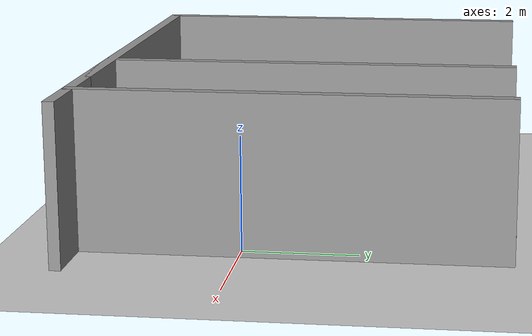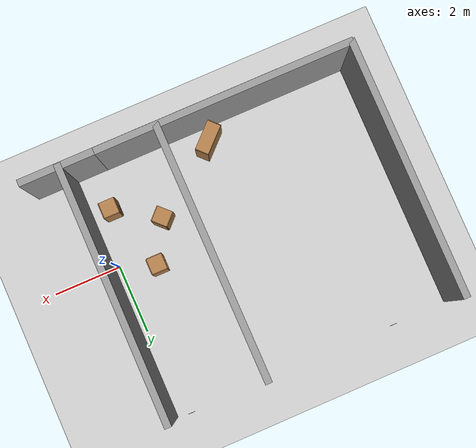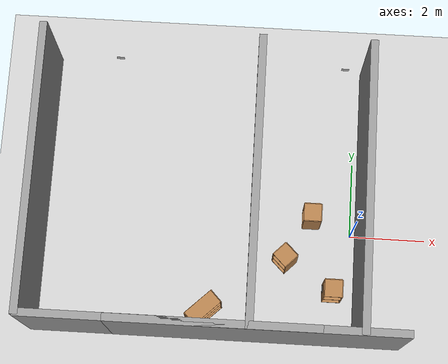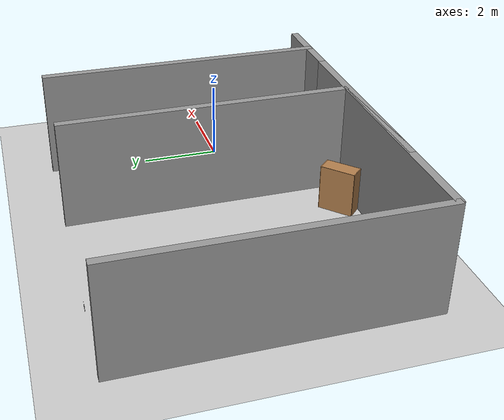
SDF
<sdf version="1.4">
 <world name="default">
  <model name="character">
   <static>1</static>
   <link name="cluedo_character::link">
    <collision name="collision">
     <geometry><plane><normal>0 0 1</normal><size>0.21 0.297</size></plane></geometry>
     <surface><friction><ode><mu>100</mu><mu2>50</mu2></ode></friction></surface>
    </collision>
    <visual name="visual">
     <pose>-0.7 -1.5 0.4 1.57 5.55112e-17 -1.57</pose>
     <cast_shadows>0</cast_shadows>
     <geometry><plane><normal>0 0 1</normal><size>0.21 0.297</size></plane></geometry>
     <material>
      <script>
       <uri>model://cluedo_character/materials/scripts</uri>
       <uri>model://cluedo_character/materials/textures</uri>
       <name>Cluedo_character/Image</name>
      </script>
     </material>
    </visual>
    <velocity_decay><linear>0</linear><angular>0</angular></velocity_decay>
   </link>
  </model>
  <model name="ground_plane">
   <static>1</static>
   <link name="link">
    <collision name="collision">
     <geometry><plane><normal>0 0 1</normal><size>100 100</size></plane></geometry>
     <surface><friction><ode><mu>100</mu><mu2>50</mu2></ode></friction></surface>
    </collision>
    <visual name="visual">
     <cast_shadows>0</cast_shadows>
     <geometry><plane><normal>0 0 1</normal><size>100 100</size></plane></geometry>
     <material>
      <script><uri>file://media/materials/scripts/gazebo.material</uri><name>Gazebo/Grey</name></script>
     </material>
    </visual>
    <velocity_decay><linear>0</linear><angular>0</angular></velocity_decay>
   </link>
  </model>
  <model name="grey_wall_0">
   <static>1</static>
   <link name="link">
    <pose>0 0 1.4 0 -0 0</pose>
    <collision name="collision"><geometry><box><size>7.5 0.2 2.8</size></box></geometry></collision>
    <visual name="visual">
     <cast_shadows>0</cast_shadows>
     <geometry><box><size>7.5 0.2 2.8</size></box></geometry>
     <material>
      <script>
       <uri>model://grey_wall/materials/scripts</uri>
       <uri>model://grey_wall/materials/textures</uri>
       <name>vrc/grey_wall</name>
      </script>
     </material>
    </visual>
    <velocity_decay><linear>0</linear><angular>0</angular></velocity_decay>
   </link>
   <pose>-4.53321 -2.83506 0 0 -0 0</pose>
  </model>
  <model name="grey_wall_1">
   <static>1</static>
   <link name="link">
    <pose>0 0 1.4 0 -0 0</pose>
    <collision name="collision"><geometry><box><size>7.5 0.2 2.8</size></box></geometry></collision>
    <visual name="visual">
     <cast_shadows>0</cast_shadows>
     <geometry><box><size>7.5 0.2 2.8</size></box></geometry>
     <material>
      <script>
       <uri>model://grey_wall/materials/scripts</uri>
       <uri>model://grey_wall/materials/textures</uri>
       <name>vrc/grey_wall</name>
      </script>
     </material>
    </visual>
    <velocity_decay><linear>0</linear><angular>0</angular></velocity_decay>
   </link>
   <pose>-8.23248 0.854179 0 0 0 -1.57181</pose>
  </model>
  <model name="grey_wall_2">
   <static>1</static>
   <link name="link">
    <pose>0 0 1.4 0 -0 0</pose>
    <collision name="collision"><geometry><box><size>7.5 0.2 2.8</size></box></geometry></collision>
    <visual name="visual">
     <cast_shadows>0</cast_shadows>
     <geometry><box><size>7.5 0.2 2.8</size></box></geometry>
     <material>
      <script>
       <uri>model://grey_wall/materials/scripts</uri>
       <uri>model://grey_wall/materials/textures</uri>
       <name>vrc/grey_wall</name>
      </script>
     </material>
    </visual>
    <velocity_decay><linear>0</linear><angular>0</angular></velocity_decay>
   </link>
   <pose>-2.58688 0.824953 0 0 -0 1.57557</pose>
  </model>
  <model name="grey_wall_3">
   <static>1</static>
   <link name="link">
    <pose>0 0 1.4 0 -0 0</pose>
    <collision name="collision"><geometry><box><size>7.5 0.2 2.8</size></box></geometry></collision>
    <visual name="visual">
     <cast_shadows>0</cast_shadows>
     <geometry><box><size>7.5 0.2 2.8</size></box></geometry>
     <material>
      <script>
       <uri>model://grey_wall/materials/scripts</uri>
       <uri>model://grey_wall/materials/textures</uri>
       <name>vrc/grey_wall</name>
      </script>
     </material>
    </visual>
    <velocity_decay><linear>0</linear><angular>0</angular></velocity_decay>
   </link>
   <pose>0.233745 0.831211 0.00212 0 0 -1.57102</pose>
  </model>
  <model name="grey_wall_4">
   <static>1</static>
   <link name="link">
    <pose>0 0 1.4 0 -0 0</pose>
    <collision name="collision"><geometry><box><size>7.5 0.2 2.8</size></box></geometry></collision>
    <visual name="visual">
     <cast_shadows>0</cast_shadows>
     <geometry><box><size>7.5 0.2 2.8</size></box></geometry>
     <material>
      <script>
       <uri>model://grey_wall/materials/scripts</uri>
       <uri>model://grey_wall/materials/textures</uri>
       <name>vrc/grey_wall</name>
      </script>
     </material>
    </visual>
    <velocity_decay><linear>0</linear><angular>0</angular></velocity_decay>
   </link>
   <pose>-2.37715 -2.83764 0 0 -0 0</pose>
  </model>
  <model name="cabinet">
   <static>1</static>
   <link name="cabinet_bottom_plate">
    <inertial>
     <pose>0 0 -1 0 -0 0</pose>
     <inertia><ixx>2.05</ixx><ixy>0</ixy><ixz>0</ixz><iyy>2.05</iyy><iyz>0</iyz><izz>2.05</izz></inertia>
     <mass>25</mass>
    </inertial>
    <collision name="cabinet_bottom_plate_geom">
     <pose>0 0 0.01 0 -0 0</pose>
     <geometry><box><size>0.45 0.45 0.02</size></box></geometry>
    </collision>
    <visual name="cabinet_bottom_plate_geom_visual">
     <pose>0 0 0.01 0 -0 0</pose>
     <geometry><box><size>0.45 0.45 0.02</size></box></geometry>
     <material>
      <script><uri>file://media/materials/scripts/gazebo.material</uri><name>Gazebo/Wood</name></script>
     </material>
    </visual>
    <collision name="cabinet_bottom_plate_geom_cabinet_back_plate">
     <pose>0.235 0 0.51 0 -0 0</pose>
     <geometry><box><size>0.02 0.45 1.02</size></box></geometry>
    </collision>
    <visual name="cabinet_bottom_plate_geom_cabinet_back_plate_visual">
     <pose>0.235 0 0.51 0 -0 0</pose>
     <geometry><box><size>0.02 0.45 1.02</size></box></geometry>
     <material>
      <script><uri>file://media/materials/scripts/gazebo.material</uri><name>Gazebo/Wood</name></script>
     </material>
    </visual>
    <collision name="cabinet_bottom_plate_geom_cabinet_left_plate">
     <pose>0 0.235 0.51 0 -0 0</pose>
     <geometry><box><size>0.45 0.02 1.02</size></box></geometry>
    </collision>
    <visual name="cabinet_bottom_plate_geom_cabinet_left_plate_visual">
     <pose>0 0.235 0.51 0 -0 0</pose>
     <geometry><box><size>0.45 0.02 1.02</size></box></geometry>
     <material>
      <script><uri>file://media/materials/scripts/gazebo.material</uri><name>Gazebo/Wood</name></script>
     </material>
    </visual>
    <collision name="cabinet_bottom_plate_geom_cabinet_middle_plate">
     <pose>0 0 0.51 0 -0 0</pose>
     <geometry><box><size>0.45 0.45 0.02</size></box></geometry>
    </collision>
    <visual name="cabinet_bottom_plate_geom_cabinet_middle_plate_visual">
     <pose>0 0 0.51 0 -0 0</pose>
     <geometry><box><size>0.45 0.45 0.02</size></box></geometry>
     <material>
      <script><uri>file://media/materials/scripts/gazebo.material</uri><name>Gazebo/Wood</name></script>
     </material>
    </visual>
    <collision name="cabinet_bottom_plate_geom_cabinet_right_plate">
     <pose>0 -0.235 0.51 0 -0 0</pose>
     <geometry><box><size>0.45 0.02 1.02</size></box></geometry>
    </collision>
    <visual name="cabinet_bottom_plate_geom_cabinet_right_plate_visual">
     <pose>0 -0.235 0.51 0 -0 0</pose>
     <geometry><box><size>0.45 0.02 1.02</size></box></geometry>
     <material>
      <script><uri>file://media/materials/scripts/gazebo.material</uri><name>Gazebo/Wood</name></script>
     </material>
    </visual>
    <collision name="cabinet_bottom_plate_geom_cabinet_top_plate">
     <pose>0 0 1.01 0 -0 0</pose>
     <geometry><box><size>0.45 0.45 0.02</size></box></geometry>
    </collision>
    <visual name="cabinet_bottom_plate_geom_cabinet_top_plate_visual">
     <pose>0 0 1.01 0 -0 0</pose>
     <geometry><box><size>0.45 0.45 0.02</size></box></geometry>
     <material>
      <script><uri>file://media/materials/scripts/gazebo.material</uri><name>Gazebo/Wood</name></script>
     </material>
    </visual>
    <velocity_decay><linear>0</linear><angular>0</angular></velocity_decay>
   </link>
   <pose>-0.446703 -1.56247 0.028898 0 -0 1.56926</pose>
  </model>
  <model name="cabinet_0">
   <static>1</static>
   <link name="cabinet_bottom_plate">
    <inertial>
     <pose>0 0 -1 0 -0 0</pose>
     <inertia><ixx>2.05</ixx><ixy>0</ixy><ixz>0</ixz><iyy>2.05</iyy><iyz>0</iyz><izz>2.05</izz></inertia>
     <mass>25</mass>
    </inertial>
    <collision name="cabinet_bottom_plate_geom">
     <pose>0 0 0.01 0 -0 0</pose>
     <geometry><box><size>0.45 0.45 0.02</size></box></geometry>
    </collision>
    <visual name="cabinet_bottom_plate_geom_visual">
     <pose>0 0 0.01 0 -0 0</pose>
     <geometry><box><size>0.45 0.45 0.02</size></box></geometry>
     <material>
      <script><uri>file://media/materials/scripts/gazebo.material</uri><name>Gazebo/Wood</name></script>
     </material>
    </visual>
    <collision name="cabinet_bottom_plate_geom_cabinet_back_plate">
     <pose>0.235 0 0.51 0 -0 0</pose>
     <geometry><box><size>0.02 0.45 1.02</size></box></geometry>
    </collision>
    <visual name="cabinet_bottom_plate_geom_cabinet_back_plate_visual">
     <pose>0.235 0 0.51 0 -0 0</pose>
     <geometry><box><size>0.02 0.45 1.02</size></box></geometry>
     <material>
      <script><uri>file://media/materials/scripts/gazebo.material</uri><name>Gazebo/Wood</name></script>
     </material>
    </visual>
    <collision name="cabinet_bottom_plate_geom_cabinet_left_plate">
     <pose>0 0.235 0.51 0 -0 0</pose>
     <geometry><box><size>0.45 0.02 1.02</size></box></geometry>
    </collision>
    <visual name="cabinet_bottom_plate_geom_cabinet_left_plate_visual">
     <pose>0 0.235 0.51 0 -0 0</pose>
     <geometry><box><size>0.45 0.02 1.02</size></box></geometry>
     <material>
      <script><uri>file://media/materials/scripts/gazebo.material</uri><name>Gazebo/Wood</name></script>
     </material>
    </visual>
    <collision name="cabinet_bottom_plate_geom_cabinet_middle_plate">
     <pose>0 0 0.51 0 -0 0</pose>
     <geometry><box><size>0.45 0.45 0.02</size></box></geometry>
    </collision>
    <visual name="cabinet_bottom_plate_geom_cabinet_middle_plate_visual">
     <pose>0 0 0.51 0 -0 0</pose>
     <geometry><box><size>0.45 0.45 0.02</size></box></geometry>
     <material>
      <script><uri>file://media/materials/scripts/gazebo.material</uri><name>Gazebo/Wood</name></script>
     </material>
    </visual>
    <collision name="cabinet_bottom_plate_geom_cabinet_right_plate">
     <pose>0 -0.235 0.51 0 -0 0</pose>
     <geometry><box><size>0.45 0.02 1.02</size></box></geometry>
    </collision>
    <visual name="cabinet_bottom_plate_geom_cabinet_right_plate_visual">
     <pose>0 -0.235 0.51 0 -0 0</pose>
     <geometry><box><size>0.45 0.02 1.02</size></box></geometry>
     <material>
      <script><uri>file://media/materials/scripts/gazebo.material</uri><name>Gazebo/Wood</name></script>
     </material>
    </visual>
    <collision name="cabinet_bottom_plate_geom_cabinet_top_plate">
     <pose>0 0 1.01 0 -0 0</pose>
     <geometry><box><size>0.45 0.45 0.02</size></box></geometry>
    </collision>
    <visual name="cabinet_bottom_plate_geom_cabinet_top_plate_visual">
     <pose>0 0 1.01 0 -0 0</pose>
     <geometry><box><size>0.45 0.45 0.02</size></box></geometry>
     <material>
      <script><uri>file://media/materials/scripts/gazebo.material</uri><name>Gazebo/Wood</name></script>
     </material>
    </visual>
    <velocity_decay><linear>0</linear><angular>0</angular></velocity_decay>
   </link>
   <pose>-1.05982 0.41087 0 0 -0 0</pose>
  </model>
  <model name="bookshelf_0">
   <static>1</static>
   <link name="link">
    <inertial><mass>1</mass></inertial>
    <collision name="back">
     <pose>0 0.005 0.6 0 -0 0</pose>
     <geometry><box><size>0.9 0.01 1.2</size></box></geometry>
    </collision>
    <visual name="visual1">
     <pose>0 0.005 0.6 0 -0 0</pose>
     <geometry><box><size>0.9 0.01 1.2</size></box></geometry>
     <material>
      <script><uri>file://media/materials/scripts/gazebo.material</uri><name>Gazebo/Wood</name></script>
     </material>
    </visual>
    <collision name="left_side">
     <pose>0.45 -0.195 0.6 0 -0 0</pose>
     <geometry><box><size>0.02 0.4 1.2</size></box></geometry>
    </collision>
    <visual name="visual2">
     <pose>0.45 -0.195 0.6 0 -0 0</pose>
     <geometry><box><size>0.02 0.4 1.2</size></box></geometry>
     <material>
      <script><uri>file://media/materials/scripts/gazebo.material</uri><name>Gazebo/Wood</name></script>
     </material>
    </visual>
    <collision name="right_side">
     <pose>-0.45 -0.195 0.6 0 -0 0</pose>
     <geometry><box><size>0.02 0.4 1.2</size></box></geometry>
    </collision>
    <visual name="visual3">
     <pose>-0.45 -0.195 0.6 0 -0 0</pose>
     <geometry><box><size>0.02 0.4 1.2</size></box></geometry>
     <material>
      <script><uri>file://media/materials/scripts/gazebo.material</uri><name>Gazebo/Wood</name></script>
     </material>
    </visual>
    <collision name="bottom">
     <pose>0 -0.195 0.03 0 -0 0</pose>
     <geometry><box><size>0.88 0.4 0.06</size></box></geometry>
    </collision>
    <visual name="visual4">
     <pose>0 -0.195 0.03 0 -0 0</pose>
     <geometry><box><size>0.88 0.4 0.06</size></box></geometry>
     <material>
      <script><uri>file://media/materials/scripts/gazebo.material</uri><name>Gazebo/Wood</name></script>
     </material>
    </visual>
    <collision name="top">
     <pose>0 -0.195 1.19 0 -0 0</pose>
     <geometry><box><size>0.88 0.4 0.02</size></box></geometry>
    </collision>
    <visual name="visual5">
     <pose>0 -0.195 1.19 0 -0 0</pose>
     <geometry><box><size>0.88 0.4 0.02</size></box></geometry>
     <material>
      <script><uri>file://media/materials/scripts/gazebo.material</uri><name>Gazebo/Wood</name></script>
     </material>
    </visual>
    <collision name="low_shelf">
     <pose>0 -0.195 0.43 0 -0 0</pose>
     <geometry><box><size>0.88 0.4 0.02</size></box></geometry>
    </collision>
    <visual name="visual6">
     <pose>0 -0.195 0.43 0 -0 0</pose>
     <geometry><box><size>0.88 0.4 0.02</size></box></geometry>
     <material>
      <script><uri>file://media/materials/scripts/gazebo.material</uri><name>Gazebo/Wood</name></script>
     </material>
    </visual>
    <collision name="high_shelf">
     <pose>0 -0.195 0.8 0 -0 0</pose>
     <geometry><box><size>0.88 0.4 0.02</size></box></geometry>
    </collision>
    <visual name="visual7">
     <pose>0 -0.195 0.8 0 -0 0</pose>
     <geometry><box><size>0.88 0.4 0.02</size></box></geometry>
     <material>
      <script><uri>file://media/materials/scripts/gazebo.material</uri><name>Gazebo/Wood</name></script>
     </material>
    </visual>
    <velocity_decay><linear>0</linear><angular>0</angular></velocity_decay>
   </link>
   <pose>-3.90366 -2.11997 0 0 -0 0.763607</pose>
  </model>
  <model name="red_image">
   <static>1</static>
   <link name="link">
    <collision name="collision">
     <geometry><plane><normal>0 0 1</normal><size>0.21 0.16</size></plane></geometry>
     <surface><friction><ode><mu>100</mu><mu2>50</mu2></ode></friction></surface>
    </collision>
    <visual name="visual">
     <pose>-6.48 4.6 0.4 1.57 4.33681e-19 3.14</pose>
     <cast_shadows>0</cast_shadows>
     <geometry><plane><normal>0 0 1</normal><size>0.21 0.16</size></plane></geometry>
     <material>
      <script>
       <uri>model://red_image/materials/scripts</uri>
       <uri>model://red_image/materials/textures</uri>
       <name>red_image/Image</name>
      </script>
     </material>
    </visual>
    <velocity_decay><linear>0</linear><angular>0</angular></velocity_decay>
   </link>
  </model>
  <model name="green_image">
   <static>1</static>
   <link name="link">
    <collision name="collision">
     <geometry><plane><normal>0 0 1</normal><size>0.21 0.16</size></plane></geometry>
     <surface><friction><ode><mu>100</mu><mu2>50</mu2></ode></friction></surface>
    </collision>
    <visual name="visual">
     <pose>-0.3 4.6 0.4 1.57 4.33681e-19 3.14</pose>
     <cast_shadows>0</cast_shadows>
     <geometry><plane><normal>0 0 1</normal><size>0.21 0.16</size></plane></geometry>
     <material>
      <script>
       <uri>model://green_image/materials/scripts</uri>
       <uri>model://green_image/materials/textures</uri>
       <name>green_image/Image</name>
      </script>
     </material>
    </visual>
    <velocity_decay><linear>0</linear><angular>0</angular></velocity_decay>
   </link>
  </model>
  <model name="cabinet_1">
   <static>1</static>
   <link name="cabinet_bottom_plate">
    <inertial>
     <pose>0 0 -1 0 -0 0</pose>
     <inertia><ixx>2.05</ixx><ixy>0</ixy><ixz>0</ixz><iyy>2.05</iyy><iyz>0</iyz><izz>2.05</izz></inertia>
     <mass>25</mass>
    </inertial>
    <collision name="cabinet_bottom_plate_geom">
     <pose>0 0 0.01 0 -0 0</pose>
     <geometry><box><size>0.45 0.45 0.02</size></box></geometry>
    </collision>
    <visual name="cabinet_bottom_plate_geom_visual">
     <pose>0 0 0.01 0 -0 0</pose>
     <geometry><box><size>0.45 0.45 0.02</size></box></geometry>
     <material>
      <script><uri>file://media/materials/scripts/gazebo.material</uri><name>Gazebo/Wood</name></script>
     </material>
    </visual>
    <collision name="cabinet_bottom_plate_geom_cabinet_back_plate">
     <pose>0.235 0 0.51 0 -0 0</pose>
     <geometry><box><size>0.02 0.45 1.02</size></box></geometry>
    </collision>
    <visual name="cabinet_bottom_plate_geom_cabinet_back_plate_visual">
     <pose>0.235 0 0.51 0 -0 0</pose>
     <geometry><box><size>0.02 0.45 1.02</size></box></geometry>
     <material>
      <script><uri>file://media/materials/scripts/gazebo.material</uri><name>Gazebo/Wood</name></script>
     </material>
    </visual>
    <collision name="cabinet_bottom_plate_geom_cabinet_left_plate">
     <pose>0 0.235 0.51 0 -0 0</pose>
     <geometry><box><size>0.45 0.02 1.02</size></box></geometry>
    </collision>
    <visual name="cabinet_bottom_plate_geom_cabinet_left_plate_visual">
     <pose>0 0.235 0.51 0 -0 0</pose>
     <geometry><box><size>0.45 0.02 1.02</size></box></geometry>
     <material>
      <script><uri>file://media/materials/scripts/gazebo.material</uri><name>Gazebo/Wood</name></script>
     </material>
    </visual>
    <collision name="cabinet_bottom_plate_geom_cabinet_middle_plate">
     <pose>0 0 0.51 0 -0 0</pose>
     <geometry><box><size>0.45 0.45 0.02</size></box></geometry>
    </collision>
    <visual name="cabinet_bottom_plate_geom_cabinet_middle_plate_visual">
     <pose>0 0 0.51 0 -0 0</pose>
     <geometry><box><size>0.45 0.45 0.02</size></box></geometry>
     <material>
      <script><uri>file://media/materials/scripts/gazebo.material</uri><name>Gazebo/Wood</name></script>
     </material>
    </visual>
    <collision name="cabinet_bottom_plate_geom_cabinet_right_plate">
     <pose>0 -0.235 0.51 0 -0 0</pose>
     <geometry><box><size>0.45 0.02 1.02</size></box></geometry>
    </collision>
    <visual name="cabinet_bottom_plate_geom_cabinet_right_plate_visual">
     <pose>0 -0.235 0.51 0 -0 0</pose>
     <geometry><box><size>0.45 0.02 1.02</size></box></geometry>
     <material>
      <script><uri>file://media/materials/scripts/gazebo.material</uri><name>Gazebo/Wood</name></script>
     </material>
    </visual>
    <collision name="cabinet_bottom_plate_geom_cabinet_top_plate">
     <pose>0 0 1.01 0 -0 0</pose>
     <geometry><box><size>0.45 0.45 0.02</size></box></geometry>
    </collision>
    <visual name="cabinet_bottom_plate_geom_cabinet_top_plate_visual">
     <pose>0 0 1.01 0 -0 0</pose>
     <geometry><box><size>0.45 0.45 0.02</size></box></geometry>
     <material>
      <script><uri>file://media/materials/scripts/gazebo.material</uri><name>Gazebo/Wood</name></script>
     </material>
    </visual>
    <velocity_decay><linear>0</linear><angular>0</angular></velocity_decay>
   </link>
   <pose>-1.71913 -0.755744 0 0 -0 0.78721</pose>
  </model>
 </world>
</sdf>
